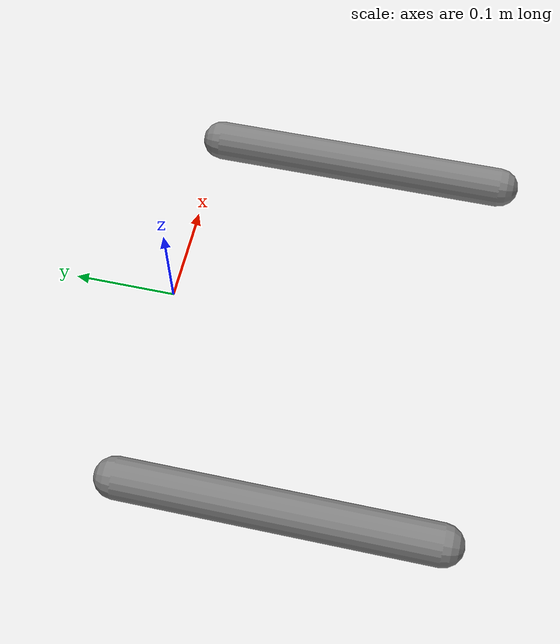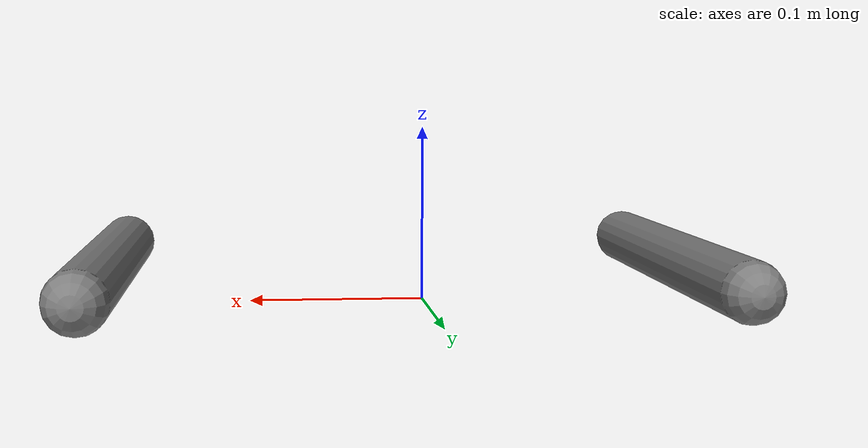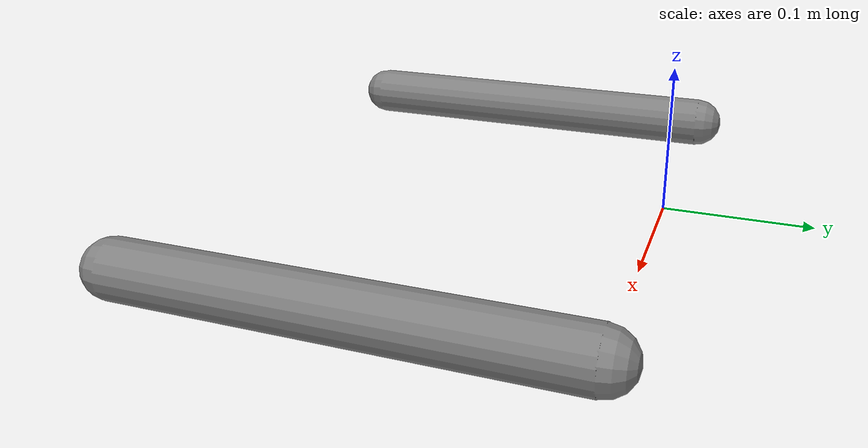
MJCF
<mujoco model="fourbar">
  <compiler angle="radian"/>
  <worldbody>
    <body name="left" pos="-0.2 0 0">
      <joint name="left_pivot" type="hinge" axis="0 0 1"/>
      <geom type="capsule" fromto="0 0 0 0 -0.3 0" size="0.02" mass="0.5"/>
      <site name="left_tip" pos="0 -0.3 0" size="0.01"/>
    </body>
    <body name="right" pos="0.2 0 0">
      <joint name="right_pivot" type="hinge" axis="0 0 1"/>
      <geom type="capsule" fromto="0 0 0 0 -0.3 0" size="0.02" mass="0.5"/>
      <site name="right_tip" pos="0 -0.3 0" size="0.01"/>
    </body>
  </worldbody>
  <equality>
    <connect body1="left" body2="right" anchor="0.4 -0.3 0"/>
  </equality>
</mujoco>
